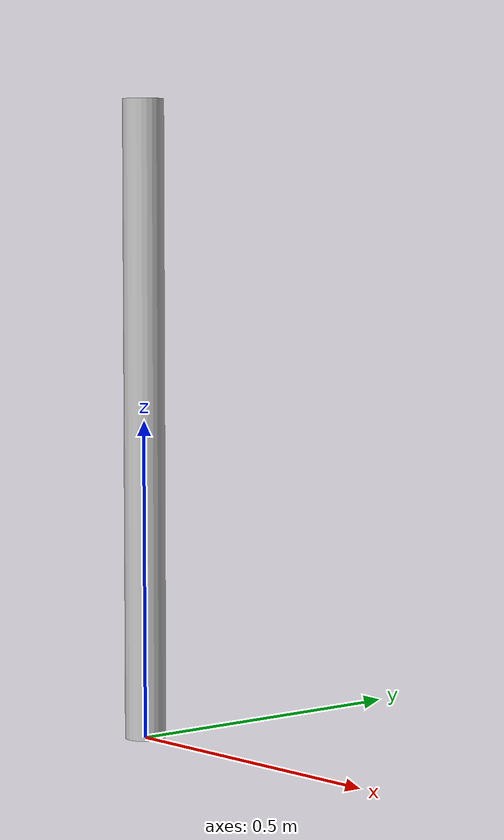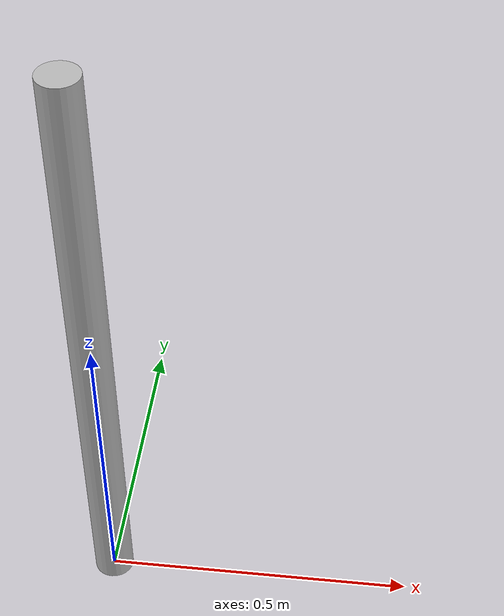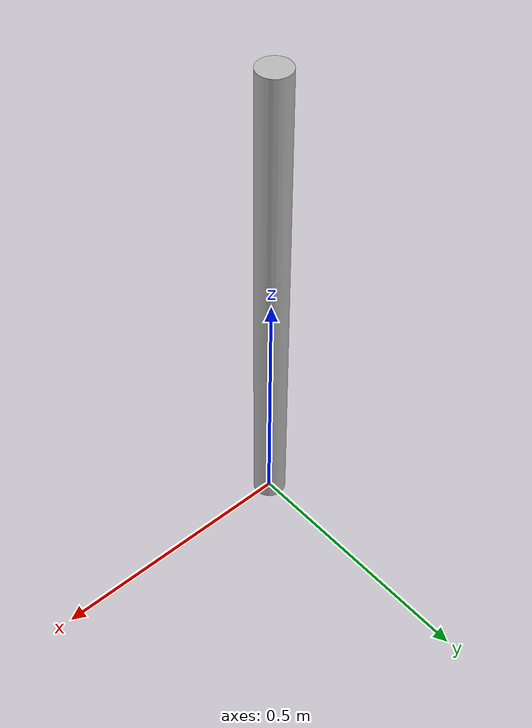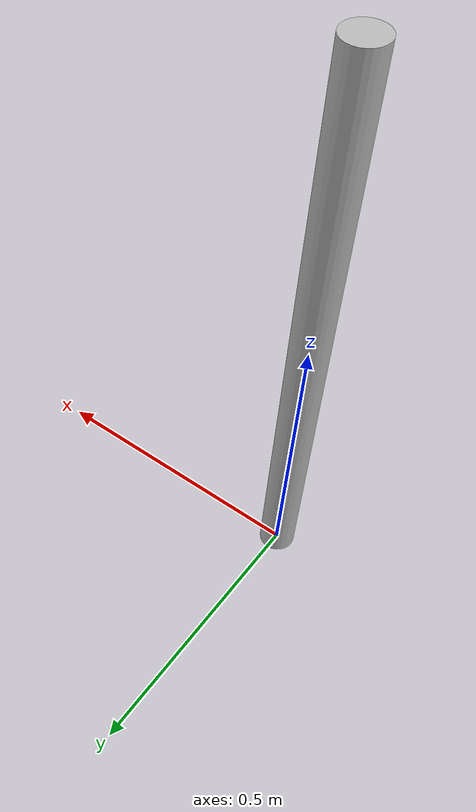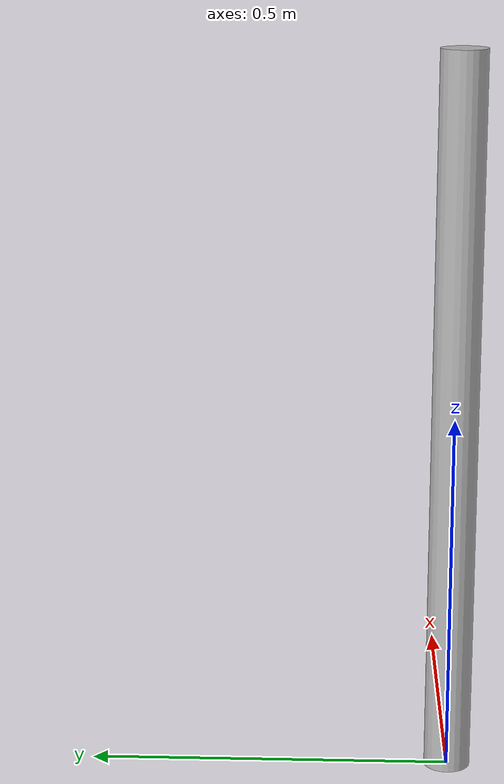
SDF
<?xml version='1.0'?>
<sdf version='1.4'>
  <model name="aluminum _bar_1">
    <static>true</static>
    <pose>0 0 0 0 0 0</pose>

    <link name="aluminum _bar_1">
      <visual name="aluminum_bar_1">
        <geometry>
          <mesh>
            <uri>model://aluminum_bar_1/aluminum_bar_1.dae</uri>
          </mesh>
        </geometry>
      </visual>
      <collision name="aluminum_bar_1">
        <geometry>
          <mesh>
            <uri>model://aluminum_bar_1/aluminum_bar_1.dae</uri>
          </mesh>
        </geometry>
      </collision>
    </link>

  </model>
</sdf>
